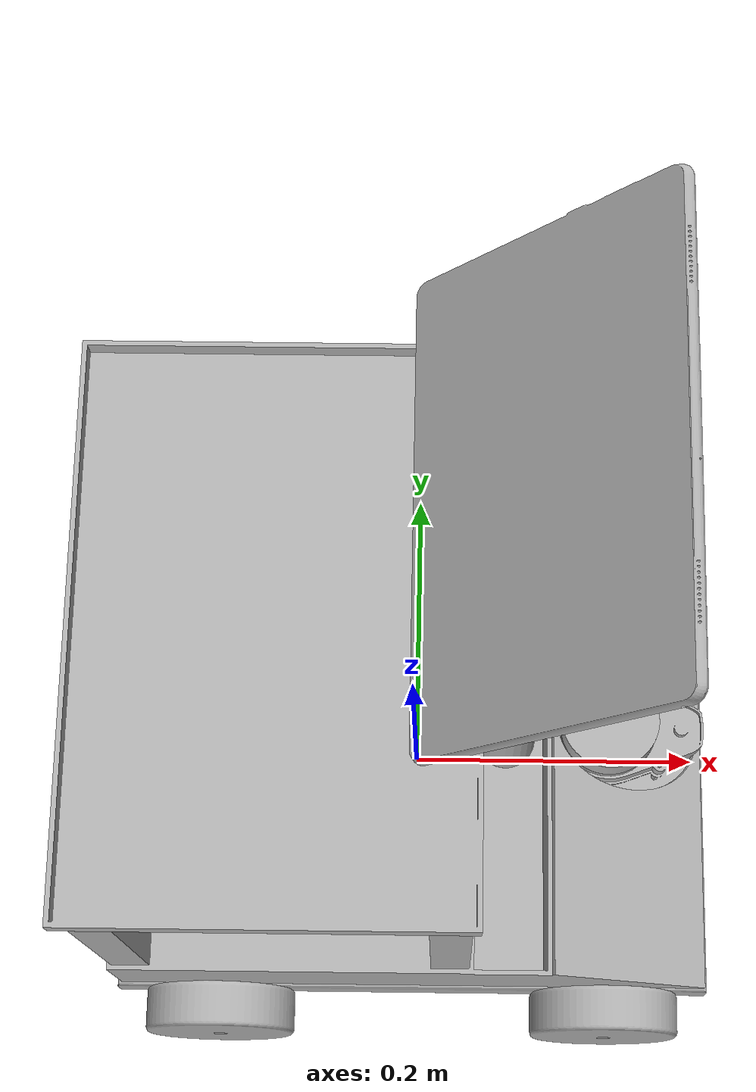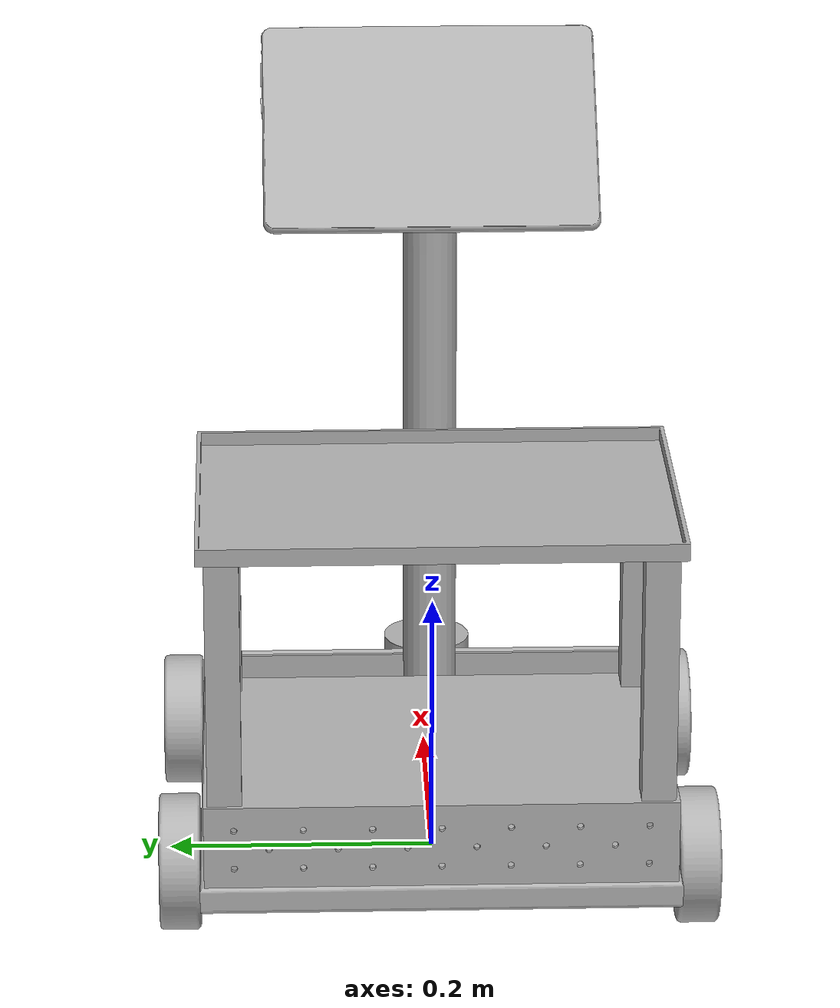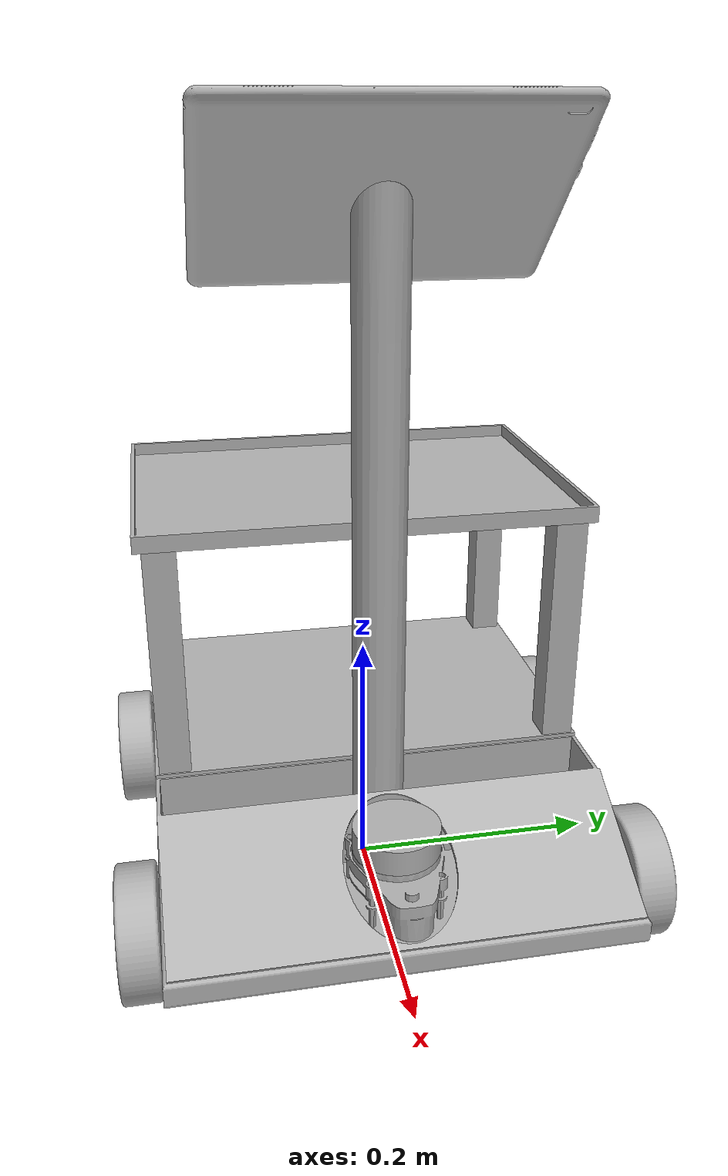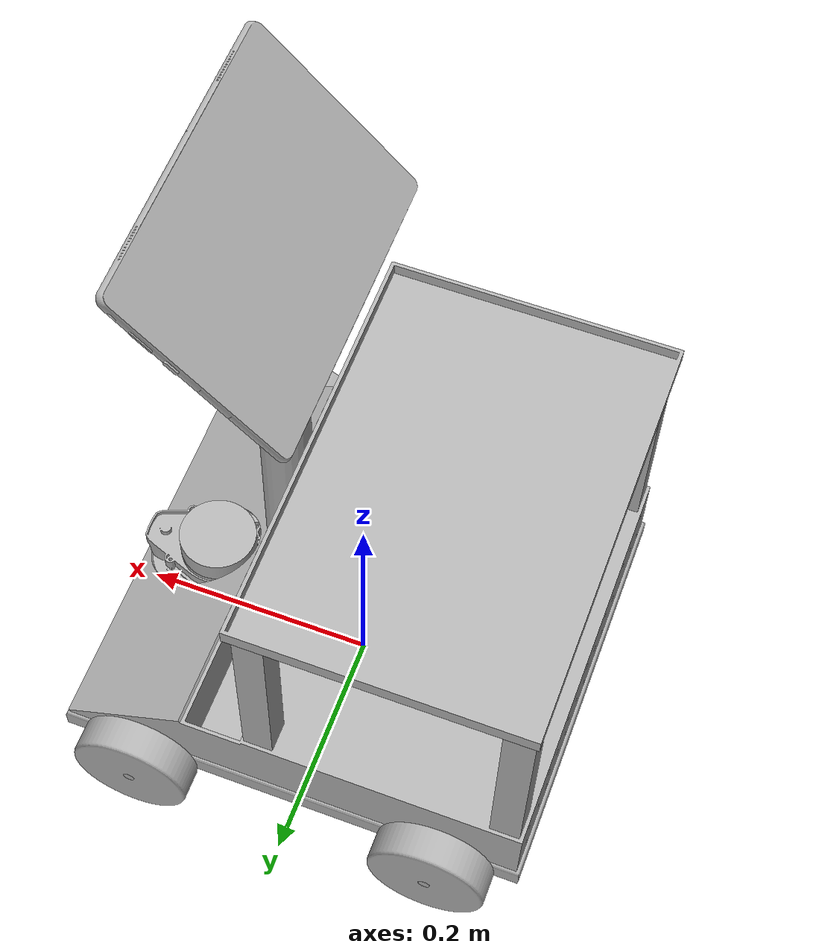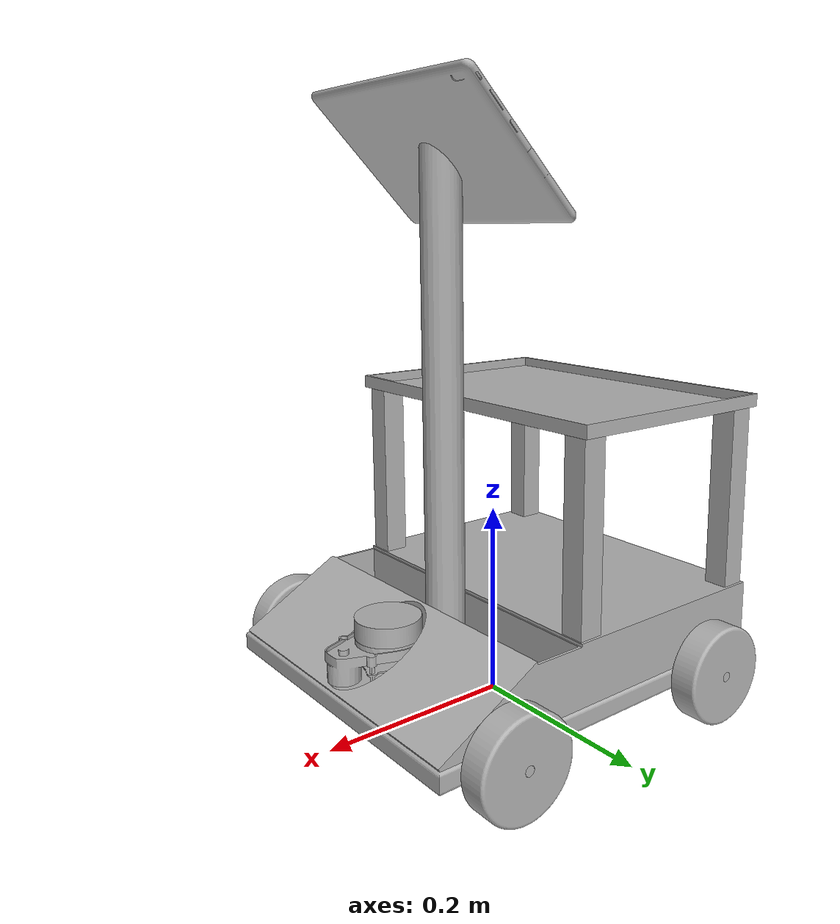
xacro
<?xml version="1.0" ?>
<robot name="guido_sim" xmlns:xacro="http://www.ros.org/wiki/xacro">

<xacro:include filename="$(find guido_sim_description)/urdf/materials.xacro" />
<xacro:include filename="$(find guido_sim_description)/urdf/guido_sim.trans" />
<xacro:include filename="$(find guido_sim_description)/urdf/guido_sim.gazebo" />

   <link name="base_link">
  <inertial>
    <origin rpy="0 0 0" xyz="0.0063537340173332926 3.9681313692529877e-17 0.05164121621053905"/>
    <mass value="0.938802159456533"/>
    <inertia ixx="0.009747" ixy="0.0" ixz="-0.000214" iyy="0.013356" iyz="-0.0" izz="0.022897"/>
  </inertial>
  <visual>
    <origin rpy="0 0 0" xyz="0 0 0"/>
    <geometry>
      <mesh filename="package://guido_sim_description/meshes/base_link.stl" scale="0.001 0.001 0.001"/>
    </geometry>
    <material name="silver"/>
  </visual>
  <collision>
    <origin rpy="0 0 0" xyz="0 0 0"/>
    <geometry>
      <mesh filename="package://guido_sim_description/meshes/base_link.stl" scale="0.001 0.001 0.001"/>
    </geometry>
  </collision>
</link>

<link name="fr_wheel__1">
  <inertial>
    <origin rpy="0 0 0" xyz="4.440892098500626e-15 0.014999999999999958 0.0"/>
    <mass value="0.1698048771968933"/>
    <inertia ixx="0.000133" ixy="0.0" ixz="0.0" iyy="0.000234" iyz="0.0" izz="0.000133"/>
  </inertial>
  <visual>
    <origin rpy="0 0 0" xyz="-0.13 0.205 -0.05"/>
    <geometry>
      <mesh filename="package://guido_sim_description/meshes/fr_wheel__1.stl" scale="0.001 0.001 0.001"/>
    </geometry>
    <material name="silver"/>
  </visual>
  <collision>
    <origin rpy="0 0 0" xyz="-0.13 0.205 -0.05"/>
    <geometry>
      <mesh filename="package://guido_sim_description/meshes/fr_wheel__1.stl" scale="0.001 0.001 0.001"/>
    </geometry>
  </collision>
</link>

<link name="fl_wheel__1">
  <inertial>
    <origin rpy="0 0 0" xyz="-4.551914400963142e-15 -0.014999999999999875 0.0"/>
    <mass value="0.1698048771968933"/>
    <inertia ixx="0.000133" ixy="0.0" ixz="0.0" iyy="0.000234" iyz="0.0" izz="0.000133"/>
  </inertial>
  <visual>
    <origin rpy="0 0 0" xyz="-0.13 -0.205 -0.05"/>
    <geometry>
      <mesh filename="package://guido_sim_description/meshes/fl_wheel__1.stl" scale="0.001 0.001 0.001"/>
    </geometry>
    <material name="silver"/>
  </visual>
  <collision>
    <origin rpy="0 0 0" xyz="-0.13 -0.205 -0.05"/>
    <geometry>
      <mesh filename="package://guido_sim_description/meshes/fl_wheel__1.stl" scale="0.001 0.001 0.001"/>
    </geometry>
  </collision>
</link>

<link name="bl_wheel___1">
  <inertial>
    <origin rpy="0 0 0" xyz="-4.440892098500626e-15 -0.014999999999999875 6.938893903907228e-18"/>
    <mass value="0.1698048771968933"/>
    <inertia ixx="0.000133" ixy="0.0" ixz="-0.0" iyy="0.000234" iyz="0.0" izz="0.000133"/>
  </inertial>
  <visual>
    <origin rpy="0 0 0" xyz="0.13 -0.205 -0.05"/>
    <geometry>
      <mesh filename="package://guido_sim_description/meshes/bl_wheel___1.stl" scale="0.001 0.001 0.001"/>
    </geometry>
    <material name="silver"/>
  </visual>
  <collision>
    <origin rpy="0 0 0" xyz="0.13 -0.205 -0.05"/>
    <geometry>
      <mesh filename="package://guido_sim_description/meshes/bl_wheel___1.stl" scale="0.001 0.001 0.001"/>
    </geometry>
  </collision>
</link>

<link name="br_wheel_1">
  <inertial>
    <origin rpy="0 0 0" xyz="4.551914400963142e-15 0.014999999999999958 0.0"/>
    <mass value="0.1698048771968933"/>
    <inertia ixx="0.000133" ixy="-0.0" ixz="0.0" iyy="0.000234" iyz="0.0" izz="0.000133"/>
  </inertial>
  <visual>
    <origin rpy="0 0 0" xyz="0.13 0.205 -0.05"/>
    <geometry>
      <mesh filename="package://guido_sim_description/meshes/br_wheel_1.stl" scale="0.001 0.001 0.001"/>
    </geometry>
    <material name="silver"/>
  </visual>
  <collision>
    <origin rpy="0 0 0" xyz="0.13 0.205 -0.05"/>
    <geometry>
      <mesh filename="package://guido_sim_description/meshes/br_wheel_1.stl" scale="0.001 0.001 0.001"/>
    </geometry>
  </collision>
</link>

<link name="lidar_1">
  <inertial>
    <origin rpy="0 0 0" xyz="-4.2413340681224376e-07 -1.976152687273254e-16 0.009999999999999981"/>
    <mass value="0.07165284205728649"/>
    <inertia ixx="2.2e-05" ixy="0.0" ixz="0.0" iyy="2.2e-05" iyz="0.0" izz="3.9e-05"/>
  </inertial>
  <visual>
    <origin rpy="0 0 0" xyz="-0.131905 0.0 -0.099"/>
    <geometry>
      <mesh filename="package://guido_sim_description/meshes/lidar_1.stl" scale="0.001 0.001 0.001"/>
    </geometry>
    <material name="silver"/>
  </visual>
  <collision>
    <origin rpy="0 0 0" xyz="-0.131905 0.0 -0.099"/>
    <geometry>
      <mesh filename="package://guido_sim_description/meshes/lidar_1.stl" scale="0.001 0.001 0.001"/>
    </geometry>
  </collision>
</link>

<link name="spacer_1_1">
  <inertial>
    <origin rpy="0 0 0" xyz="0.22249999999999995 0.015499999999999847 0.125"/>
    <mass value="0.18404820000000016"/>
    <inertia ixx="0.001032" ixy="-0.0" ixz="-0.0" iyy="0.001032" iyz="0.0" izz="3e-05"/>
  </inertial>
  <visual>
    <origin rpy="0 0 0" xyz="0.197 0.172 -0.06"/>
    <geometry>
      <mesh filename="package://guido_sim_description/meshes/spacer_1_1.stl" scale="0.001 0.001 0.001"/>
    </geometry>
    <material name="silver"/>
  </visual>
  <collision>
    <origin rpy="0 0 0" xyz="0.197 0.172 -0.06"/>
    <geometry>
      <mesh filename="package://guido_sim_description/meshes/spacer_1_1.stl" scale="0.001 0.001 0.001"/>
    </geometry>
  </collision>
</link>

<link name="spacer_2_1">
  <inertial>
    <origin rpy="0 0 0" xyz="0.015500000000000264 0.015499999999999903 0.12500000000000003"/>
    <mass value="0.18404820000000033"/>
    <inertia ixx="0.001032" ixy="-0.0" ixz="0.0" iyy="0.001032" iyz="0.0" izz="3e-05"/>
  </inertial>
  <visual>
    <origin rpy="0 0 0" xyz="0.197 0.172 -0.06"/>
    <geometry>
      <mesh filename="package://guido_sim_description/meshes/spacer_2_1.stl" scale="0.001 0.001 0.001"/>
    </geometry>
    <material name="silver"/>
  </visual>
  <collision>
    <origin rpy="0 0 0" xyz="0.197 0.172 -0.06"/>
    <geometry>
      <mesh filename="package://guido_sim_description/meshes/spacer_2_1.stl" scale="0.001 0.001 0.001"/>
    </geometry>
  </collision>
</link>

<link name="spacer_3_1">
  <inertial>
    <origin rpy="0 0 0" xyz="0.015500000000000264 -0.015500000000000153 0.12500000000000003"/>
    <mass value="0.18404820000000033"/>
    <inertia ixx="0.001032" ixy="-0.0" ixz="0.0" iyy="0.001032" iyz="-0.0" izz="3e-05"/>
  </inertial>
  <visual>
    <origin rpy="0 0 0" xyz="0.197 -0.172 -0.06"/>
    <geometry>
      <mesh filename="package://guido_sim_description/meshes/spacer_3_1.stl" scale="0.001 0.001 0.001"/>
    </geometry>
    <material name="silver"/>
  </visual>
  <collision>
    <origin rpy="0 0 0" xyz="0.197 -0.172 -0.06"/>
    <geometry>
      <mesh filename="package://guido_sim_description/meshes/spacer_3_1.stl" scale="0.001 0.001 0.001"/>
    </geometry>
  </collision>
</link>

<link name="spacer_4_1">
  <inertial>
    <origin rpy="0 0 0" xyz="0.22249999999999995 -0.015500000000000125 0.125"/>
    <mass value="0.18404820000000016"/>
    <inertia ixx="0.001032" ixy="0.0" ixz="-0.0" iyy="0.001032" iyz="0.0" izz="3e-05"/>
  </inertial>
  <visual>
    <origin rpy="0 0 0" xyz="0.197 -0.172 -0.06"/>
    <geometry>
      <mesh filename="package://guido_sim_description/meshes/spacer_4_1.stl" scale="0.001 0.001 0.001"/>
    </geometry>
    <material name="silver"/>
  </visual>
  <collision>
    <origin rpy="0 0 0" xyz="0.197 -0.172 -0.06"/>
    <geometry>
      <mesh filename="package://guido_sim_description/meshes/spacer_4_1.stl" scale="0.001 0.001 0.001"/>
    </geometry>
  </collision>
</link>

<link name="frame_1">
  <inertial>
    <origin rpy="0 0 0" xyz="0.18016293093198765 -0.17199972848082534 0.041573329823873864"/>
    <mass value="0.5199548559238468"/>
    <inertia ixx="0.007355" ixy="-0.0" ixz="0.000429" iyy="0.007373" iyz="-0.0" izz="0.014278"/>
  </inertial>
  <visual>
    <origin rpy="0 0 0" xyz="0.197 -0.172 -0.06"/>
    <geometry>
      <mesh filename="package://guido_sim_description/meshes/frame_1.stl" scale="0.001 0.001 0.001"/>
    </geometry>
    <material name="silver"/>
  </visual>
  <collision>
    <origin rpy="0 0 0" xyz="0.197 -0.172 -0.06"/>
    <geometry>
      <mesh filename="package://guido_sim_description/meshes/frame_1.stl" scale="0.001 0.001 0.001"/>
    </geometry>
  </collision>
</link>

<link name="cap_1">
  <inertial>
    <origin rpy="0 0 0" xyz="0.1167499929941262 0.16900000831205395 0.0023502068534852483"/>
    <mass value="0.22829202000000315"/>
    <inertia ixx="0.002564" ixy="-0.0" ixz="0.0" iyy="0.001251" iyz="-0.0" izz="0.003812"/>
  </inertial>
  <visual>
    <origin rpy="0 0 0" xyz="0.194 0.169 -0.31"/>
    <geometry>
      <mesh filename="package://guido_sim_description/meshes/cap_1.stl" scale="0.001 0.001 0.001"/>
    </geometry>
    <material name="silver"/>
  </visual>
  <collision>
    <origin rpy="0 0 0" xyz="0.194 0.169 -0.31"/>
    <geometry>
      <mesh filename="package://guido_sim_description/meshes/cap_1.stl" scale="0.001 0.001 0.001"/>
    </geometry>
  </collision>
</link>

<link name="tablet_holder_1">
  <inertial>
    <origin rpy="0 0 0" xyz="-0.1336384225786269 0.1719999999999999 0.2418570041382359"/>
    <mass value="0.16732805862193884"/>
    <inertia ixx="0.003517" ixy="-0.0" ixz="-1.5e-05" iyy="0.003517" iyz="0.0" izz="5.9e-05"/>
  </inertial>
  <visual>
    <origin rpy="0 0 0" xyz="-0.197 0.172 -0.06"/>
    <geometry>
      <mesh filename="package://guido_sim_description/meshes/tablet_holder_1.stl" scale="0.001 0.001 0.001"/>
    </geometry>
    <material name="silver"/>
  </visual>
  <collision>
    <origin rpy="0 0 0" xyz="-0.197 0.172 -0.06"/>
    <geometry>
      <mesh filename="package://guido_sim_description/meshes/tablet_holder_1.stl" scale="0.001 0.001 0.001"/>
    </geometry>
  </collision>
</link>

<link name="tablet_1">
  <inertial>
    <origin rpy="0 0 0" xyz="0.006712633215995953 -5.322377848058779e-06 0.010349017648959347"/>
    <mass value="0.45460526206157775"/>
    <inertia ixx="0.002798" ixy="0.0" ixz="-0.000535" iyy="0.001077" iyz="0.0" izz="0.002798"/>
  </inertial>
  <visual>
    <origin rpy="0 0 0" xyz="-0.06 0.0 -0.54"/>
    <geometry>
      <mesh filename="package://guido_sim_description/meshes/tablet_1.stl" scale="0.001 0.001 0.001"/>
    </geometry>
    <material name="silver"/>
  </visual>
  <collision>
    <origin rpy="0 0 0" xyz="-0.06 0.0 -0.54"/>
    <geometry>
      <mesh filename="package://guido_sim_description/meshes/tablet_1.stl" scale="0.001 0.001 0.001"/>
    </geometry>
  </collision>
</link>

<joint name="fr_joint" type="continuous">
  <origin rpy="0 0 0" xyz="0.13 -0.205 0.05"/>
  <parent link="base_link"/>
  <child link="fr_wheel__1"/>
  <axis xyz="0.0 1.0 0.0"/>
</joint>

<joint name="fl_joint" type="continuous">
  <origin rpy="0 0 0" xyz="0.13 0.205 0.05"/>
  <parent link="base_link"/>
  <child link="fl_wheel__1"/>
  <axis xyz="-0.0 1.0 0.0"/>
</joint>

<joint name="bl_joint" type="continuous">
  <origin rpy="0 0 0" xyz="-0.13 0.205 0.05"/>
  <parent link="base_link"/>
  <child link="bl_wheel___1"/>
  <axis xyz="0.0 1.0 0.0"/>
</joint>

<joint name="br_joint" type="continuous">
  <origin rpy="0 0 0" xyz="-0.13 -0.205 0.05"/>
  <parent link="base_link"/>
  <child link="br_wheel_1"/>
  <axis xyz="-0.0 1.0 0.0"/>
</joint>

<joint name="lidar_joint" type="fixed">
  <origin rpy="0 0 0" xyz="0.131905 0.0 0.099"/>
  <parent link="base_link"/>
  <child link="lidar_1"/>
</joint>

<joint name="spacer1_joint" type="fixed">
  <origin rpy="0 0 0" xyz="-0.197 -0.172 0.06"/>
  <parent link="base_link"/>
  <child link="spacer_1_1"/>
</joint>

<joint name="spacer2_joint" type="fixed">
  <origin rpy="0 0 0" xyz="-0.197 -0.172 0.06"/>
  <parent link="base_link"/>
  <child link="spacer_2_1"/>
</joint>

<joint name="spacer3_joint" type="fixed">
  <origin rpy="0 0 0" xyz="-0.197 0.172 0.06"/>
  <parent link="base_link"/>
  <child link="spacer_3_1"/>
</joint>

<joint name="spacer4_joint" type="fixed">
  <origin rpy="0 0 0" xyz="-0.197 0.172 0.06"/>
  <parent link="base_link"/>
  <child link="spacer_4_1"/>
</joint>

<joint name="frame_joint" type="fixed">
  <origin rpy="0 0 0" xyz="-0.197 0.172 0.06"/>
  <parent link="base_link"/>
  <child link="frame_1"/>
</joint>

<joint name="cap_joint" type="fixed">
  <origin rpy="0 0 0" xyz="0.003 0.003 0.25"/>
  <parent link="spacer_2_1"/>
  <child link="cap_1"/>
</joint>

<joint name="holder_joint" type="fixed">
  <origin rpy="0 0 0" xyz="0.197 -0.172 0.06"/>
  <parent link="base_link"/>
  <child link="tablet_holder_1"/>
</joint>

<joint name="tablet_joint" type="fixed">
  <origin rpy="0 0 0" xyz="-0.137 0.172 0.48"/>
  <parent link="tablet_holder_1"/>
  <child link="tablet_1"/>
</joint>

</robot>

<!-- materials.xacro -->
<robot name="guido_sim" xmlns:xacro="http://www.ros.org/wiki/xacro" >

<material name="silver">
  <color rgba="0.700 0.700 0.700 1.000"/>
</material>

</robot>

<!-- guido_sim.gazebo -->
<robot name="guido_sim" xmlns:xacro="http://www.ros.org/wiki/xacro" >

<xacro:property name="body_color" value="Gazebo/Silver" />
<xacro:property name="wheel_color" value="Gazebo/DarkGrey" />

<gazebo>
  <plugin filename="libgazebo_ros_control.so" name="gazebo_ros_control">
    <robotNamespace>/guido_sim</robotNamespace>
    <robotSimType>gazebo_ros_control/DefaultRobotHWSim</robotSimType>
    <legacyModeNS>true</legacyModeNS>
  </plugin>
</gazebo>

<gazebo>
<plugin name="skid_steer_drive_controller" filename="libgazebo_ros_skid_steer_drive.so">
  <updateRate>100.0</updateRate>
  <robotNamespace>/</robotNamespace>
  <leftFrontJoint>fl_joint</leftFrontJoint>
  <rightFrontJoint>fr_joint</rightFrontJoint>
  <leftRearJoint>bl_joint</leftRearJoint>
  <rightRearJoint>br_joint</rightRearJoint>
  <wheelSeparation>0.296</wheelSeparation>
 <!-- Diameter of the wheels, in meters, defaults to 0.15 m -->
  <wheelDiameter>0.1</wheelDiameter>
  <robotBaseFrame>base_link</robotBaseFrame>
  <topicName>/cmd_vel</topicName>
  <broadcastTF>true</broadcastTF>

 <!-- Maximum torque which the wheels can produce, in Nm, defaults to 5 Nm -->
  <torque>1</torque>

 <!-- Topic to receive geometry_msgs/Twist message commands, defaults to `cmd_vel` -->
  <commandTopic>/cmd_vel</commandTopic>

  <!-- Topic to publish nav_msgs/Odometry messages, defaults to `odom` -->
  <odometryTopic>odom</odometryTopic>

  <!-- Odometry frame, defaults to `odom` -->
  <odometryFrame>odom</odometryFrame>

  <!-- Robot frame to calculate odometry from, defaults to `base_footprint` -->
  <robotBaseFrame>base_link</robotBaseFrame>

  <!-- Odometry source, 0 for ENCODER, 1 for WORLD, defaults to WORLD -->
  <odometrySource>1</odometrySource>

  <!-- Set to true to publish transforms for the wheel links, defaults to false -->
  <publishWheelTF>true</publishWheelTF>

  <!-- Set to true to publish transforms for the odometry, defaults to true -->
  <publishOdom>true</publishOdom>

  <!-- Set to true to publish sensor_msgs/JointState on /joint_states for the wheel joints, defaults to false -->
  <publishWheelJointState>true</publishWheelJointState>
</plugin>
</gazebo>

<gazebo reference="lidar_1">
<sensor type="ray" name="idar">
  <pose>0 0 0 0 0 0</pose>
  <visualize>true</visualize>
  <update_rate>40</update_rate>
  <ray>
    <scan>
      <horizontal>
        <samples>720</samples>
        <resolution>1</resolution>
        <min_angle>-0.78539</min_angle>
        <max_angle>0.78539</max_angle>
      </horizontal>
    </scan>
    <range>
      <min>0.10</min>
      <max>30.0</max>
      <resolution>0.01</resolution>
    </range>
    <noise>
      <type>gaussian</type>
      <mean>0.0</mean>
      <stddev>0.01</stddev>
    </noise>
  </ray>
  <plugin name="gazebo_ros_head_hokuyo_controller" filename="libgazebo_ros_laser.so">
    <topicName>/scan</topicName>
    <frameName>lidar_1</frameName>
  </plugin>
</sensor>
</gazebo>

<gazebo reference="base_link">
<material>${body_color}</material>
<mu1>0.2</mu1>
<mu2>0.2</mu2>
<selfCollide>true</selfCollide>
<gravity>true</gravity>
</gazebo>

<gazebo reference="fr_wheel__1">
  <material>${wheel_color}</material>
  <mu1>100</mu1>
  <mu2>100</mu2>
  <selfCollide>true</selfCollide>
</gazebo>

<gazebo reference="fl_wheel__1">
  <material>${wheel_color}</material>
  <mu1>100</mu1>
  <mu2>100</mu2>
  <selfCollide>true</selfCollide>
</gazebo>

<gazebo reference="bl_wheel___1">
  <material>${wheel_color}</material>
  <mu1>100</mu1>
  <mu2>100</mu2>
  <selfCollide>true</selfCollide>
</gazebo>

<gazebo reference="br_wheel_1">
  <material>${wheel_color}</material>
  <mu1>100</mu1>
  <mu2>100</mu2>
  <selfCollide>true</selfCollide>
</gazebo>

<gazebo reference="lidar_1">
  <material>${body_color}</material>
  <mu1>0.2</mu1>
  <mu2>0.2</mu2>
  <selfCollide>true</selfCollide>
</gazebo>

<gazebo reference="spacer_1_1">
  <material>${body_color}</material>
  <mu1>0.2</mu1>
  <mu2>0.2</mu2>
  <selfCollide>true</selfCollide>
</gazebo>

<gazebo reference="spacer_2_1">
  <material>${body_color}</material>
  <mu1>0.2</mu1>
  <mu2>0.2</mu2>
  <selfCollide>true</selfCollide>
</gazebo>

<gazebo reference="spacer_3_1">
  <material>${body_color}</material>
  <mu1>0.2</mu1>
  <mu2>0.2</mu2>
  <selfCollide>true</selfCollide>
</gazebo>

<gazebo reference="spacer_4_1">
  <material>${body_color}</material>
  <mu1>0.2</mu1>
  <mu2>0.2</mu2>
  <selfCollide>true</selfCollide>
</gazebo>

<gazebo reference="frame_1">
  <material>${body_color}</material>
  <mu1>0.2</mu1>
  <mu2>0.2</mu2>
  <selfCollide>true</selfCollide>
</gazebo>

<gazebo reference="cap_1">
  <material>${body_color}</material>
  <mu1>0.2</mu1>
  <mu2>0.2</mu2>
  <selfCollide>true</selfCollide>
</gazebo>

<gazebo reference="tablet_holder_1">
  <material>${body_color}</material>
  <mu1>0.2</mu1>
  <mu2>0.2</mu2>
  <selfCollide>true</selfCollide>
</gazebo>

<gazebo reference="tablet_1">
  <material>${body_color}</material>
  <mu1>0.2</mu1>
  <mu2>0.2</mu2>
  <selfCollide>true</selfCollide>
</gazebo>

</robot>
